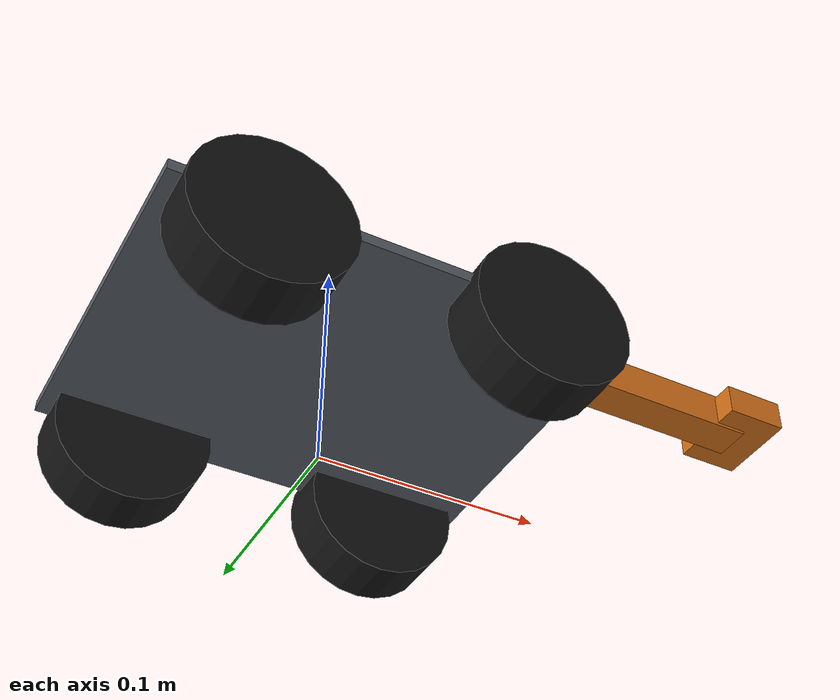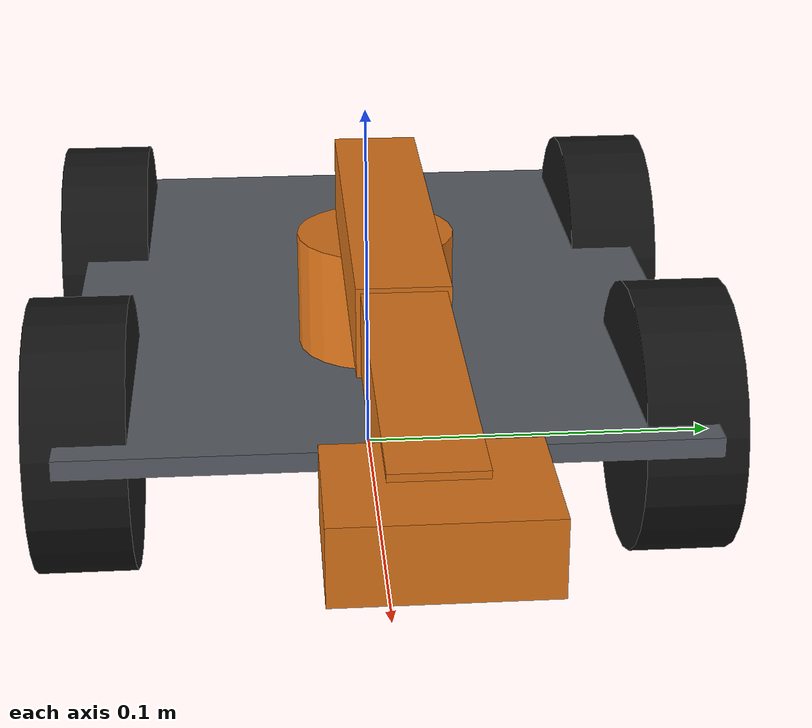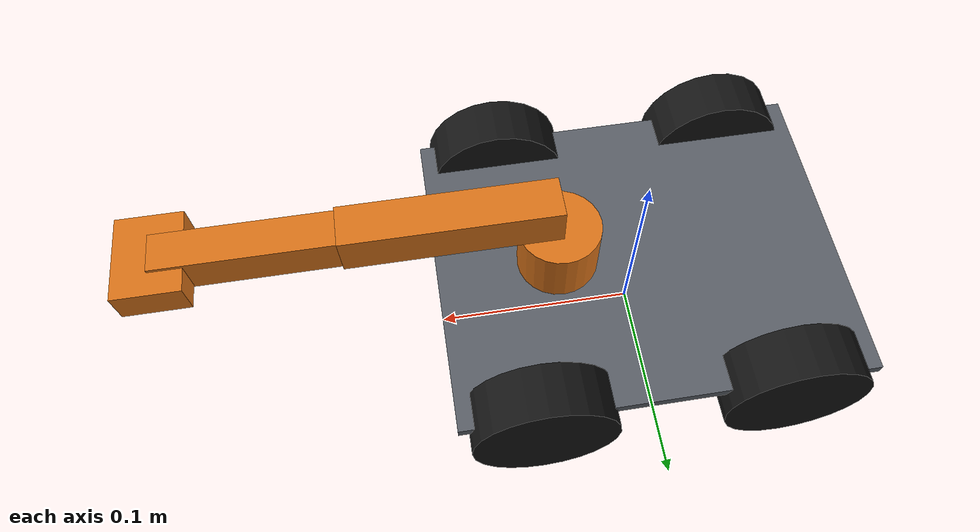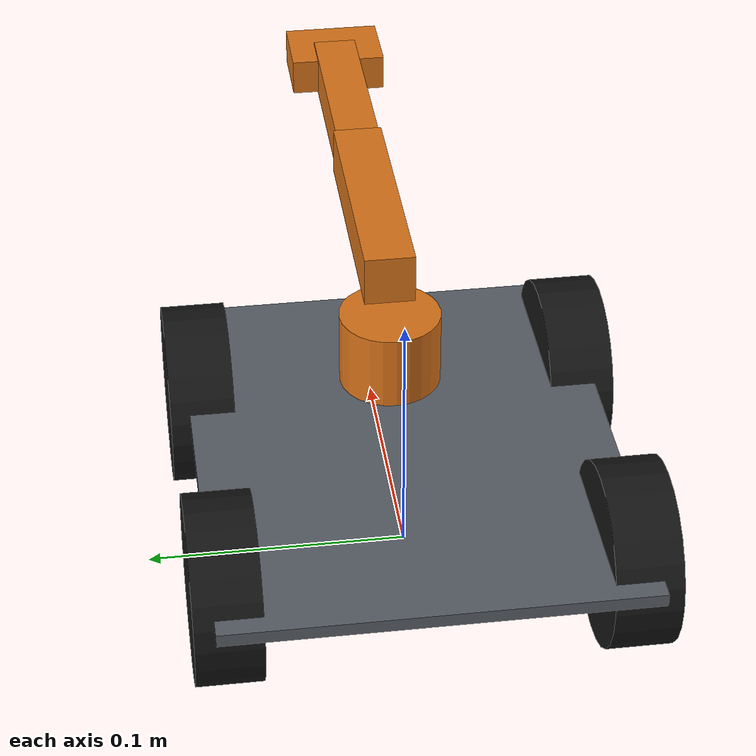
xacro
<?xml version="1.0"?>
<!-- 底盘 + 四自由度舵机臂示意模型；尺寸可按实车微调 -->
<robot name="pickup_bot" xmlns:xacro="http://www.ros.org/wiki/xacro">

  <xacro:property name="deck_x" value="0.20"/>
  <xacro:property name="deck_y" value="0.16"/>
  <xacro:property name="deck_z" value="0.005"/>
  <xacro:property name="deck_z_pos" value="0.045"/>
  <xacro:property name="wheel_radius" value="0.035"/>
  <xacro:property name="wheel_width" value="0.025"/>
  <xacro:property name="track" value="0.15"/>
  <xacro:property name="wheelbase" value="0.12"/>

  <material name="deck_gray"><color rgba="0.35 0.37 0.40 1.0"/></material>
  <material name="wheel_black"><color rgba="0.08 0.08 0.08 1.0"/></material>
  <material name="arm_orange"><color rgba="0.85 0.45 0.10 1.0"/></material>

  <link name="base_footprint"/>
  <joint name="base_footprint_joint" type="fixed">
    <parent link="base_footprint"/>
    <child link="base_link"/>
    <origin xyz="0 0 ${deck_z_pos}" rpy="0 0 0"/>
  </joint>

  <link name="base_link">
    <visual>
      <geometry><box size="${deck_x} ${deck_y} ${deck_z}"/></geometry>
      <material name="deck_gray"/>
    </visual>
    <collision>
      <geometry><box size="${deck_x} ${deck_y} ${deck_z}"/></geometry>
    </collision>
    <inertial>
      <mass value="1.5"/>
      <inertia ixx="0.005" ixy="0" ixz="0" iyy="0.008" iyz="0" izz="0.012"/>
    </inertial>
  </link>

  <xacro:macro name="wheel" params="prefix x_sign y_sign">
    <joint name="${prefix}_joint" type="continuous">
      <parent link="base_link"/>
      <child link="${prefix}_wheel"/>
      <origin xyz="${x_sign * wheelbase / 2} ${y_sign * track / 2} ${wheel_radius - deck_z_pos}" rpy="0 0 0"/>
      <axis xyz="0 1 0"/>
    </joint>
    <link name="${prefix}_wheel">
      <visual>
        <origin xyz="0 0 0" rpy="1.5707963 0 0"/>
        <geometry><cylinder radius="${wheel_radius}" length="${wheel_width}"/></geometry>
        <material name="wheel_black"/>
      </visual>
      <inertial>
        <mass value="0.06"/>
        <inertia ixx="0.0001" ixy="0" ixz="0" iyy="0.0001" iyz="0" izz="0.0001"/>
      </inertial>
    </link>
  </xacro:macro>

  <xacro:wheel prefix="front_left"  x_sign="1"  y_sign="1"/>
  <xacro:wheel prefix="front_right" x_sign="1"  y_sign="-1"/>
  <xacro:wheel prefix="rear_left"   x_sign="-1" y_sign="1"/>
  <xacro:wheel prefix="rear_right"  x_sign="-1" y_sign="-1"/>

  <!-- 四自由度臂：底座 / 肩 / 肘 / 夹爪 -->
  <joint name="base_yaw_joint" type="revolute">
    <parent link="base_link"/>
    <child link="arm_base"/>
    <origin xyz="0.04 0 0.02" rpy="0 0 0"/>
    <axis xyz="0 0 1"/>
    <limit lower="-1.57" upper="1.57" effort="5" velocity="1.5"/>
  </joint>
  <link name="arm_base">
    <visual>
      <geometry><cylinder radius="0.02" length="0.03"/></geometry>
      <material name="arm_orange"/>
    </visual>
    <inertial>
      <mass value="0.1"/>
      <inertia ixx="0.0001" ixy="0" ixz="0" iyy="0.0001" iyz="0" izz="0.0001"/>
    </inertial>
  </link>

  <joint name="shoulder_joint" type="revolute">
    <parent link="arm_base"/>
    <child link="upper_arm"/>
    <origin xyz="0 0 0.03" rpy="0 0 0"/>
    <axis xyz="0 1 0"/>
    <limit lower="-1.8" upper="1.8" effort="5" velocity="1.5"/>
  </joint>
  <link name="upper_arm">
    <visual>
      <origin xyz="0.05 0 0"/>
      <geometry><box size="0.10 0.02 0.02"/></geometry>
      <material name="arm_orange"/>
    </visual>
    <inertial>
      <mass value="0.08"/>
      <inertia ixx="0.0001" ixy="0" ixz="0" iyy="0.0001" iyz="0" izz="0.0001"/>
    </inertial>
  </link>

  <joint name="elbow_joint" type="revolute">
    <parent link="upper_arm"/>
    <child link="forearm"/>
    <origin xyz="0.10 0 0" rpy="0 0 0"/>
    <axis xyz="0 1 0"/>
    <limit lower="-2.0" upper="2.0" effort="5" velocity="1.5"/>
  </joint>
  <link name="forearm">
    <visual>
      <origin xyz="0.04 0 0"/>
      <geometry><box size="0.08 0.018 0.018"/></geometry>
      <material name="arm_orange"/>
    </visual>
    <inertial>
      <mass value="0.06"/>
      <inertia ixx="0.0001" ixy="0" ixz="0" iyy="0.0001" iyz="0" izz="0.0001"/>
    </inertial>
  </link>

  <joint name="gripper_joint" type="revolute">
    <parent link="forearm"/>
    <child link="gripper"/>
    <origin xyz="0.08 0 0" rpy="0 0 0"/>
    <axis xyz="0 0 1"/>
    <limit lower="0" upper="1.0" effort="2" velocity="2.0"/>
  </joint>
  <link name="gripper">
    <visual>
      <geometry><box size="0.03 0.04 0.015"/></geometry>
      <material name="arm_orange"/>
    </visual>
    <inertial>
      <mass value="0.04"/>
      <inertia ixx="0.00005" ixy="0" ixz="0" iyy="0.00005" iyz="0" izz="0.00005"/>
    </inertial>
  </link>

</robot>
